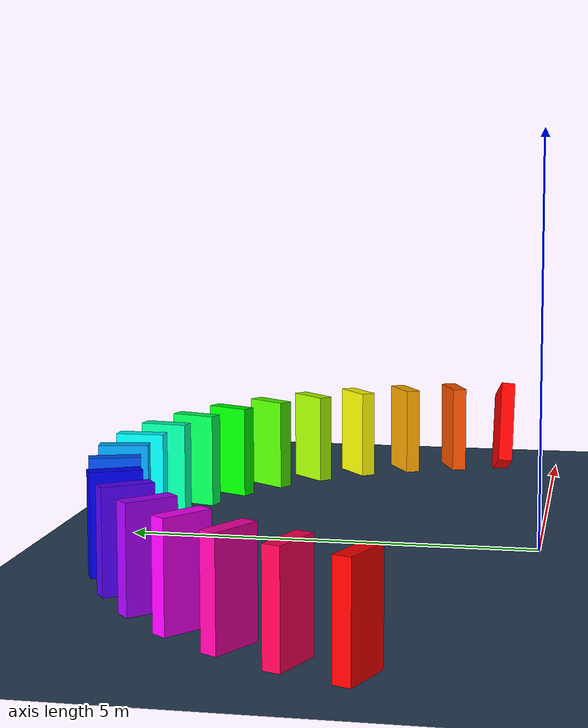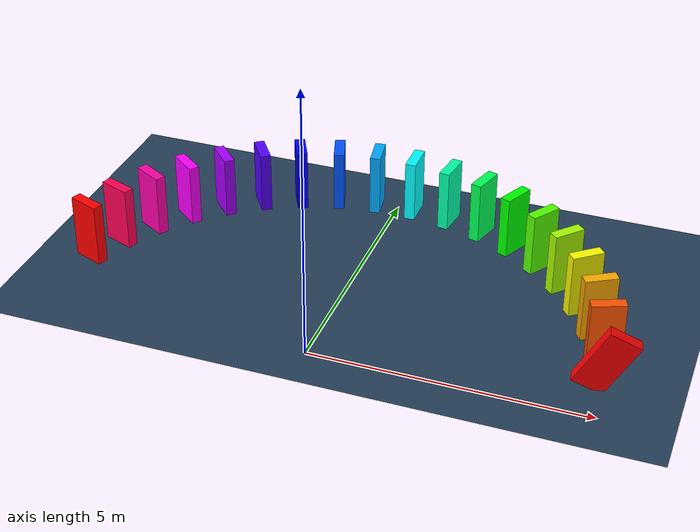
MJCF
<mujoco>
  <visual>
    <headlight diffuse="0.6 0.6 0.6" ambient="0.1 0.1 0.1" specular="0 0 0"/>
    <rgba haze="0.15 0.25 0.35 1"/>
    <global azimuth="120" elevation="-20"/>
  </visual>
  <asset>
    <texture type="skybox" builtin="gradient" rgb1="0.3 0.5 0.7" rgb2="0 0 0" width="512" height="3072"/>
    <texture type="2d" name="groundplane" builtin="checker" mark="edge" rgb1="0.2 0.3 0.4" rgb2="0.1 0.2 0.3" markrgb="0.8 0.8 0.8" width="300" height="300"/>
    <material name="groundplane" texture="groundplane" texuniform="true" texrepeat="5 5" reflectance="0.2"/>
  </asset>
  <worldbody>
    <light pos="0 0 1.5" dir="0 0 -1" directional="true"/>
    <geom name="floor" size="0 0 0.05" type="plane" material="groundplane"/>
    <body name="trigger" pos="4.9384 0.7822 0.5767" euler="0 28.0 103.3">
      <geom type="box" size="0.1000 0.3000 0.6000" rgba="1.000 0.000 0.000 1"/>
      <freejoint/>
    </body>
    <body name="domino_001" pos="4.7661 1.5114 0.6000" euler="0 0.0 111.9">
      <geom type="box" size="0.1000 0.3000 0.6000" rgba="1.000 0.333 0.000 1"/>
      <freejoint/>
    </body>
    <body name="domino_002" pos="4.4867 2.2066 0.6000" euler="0 0.0 120.5">
      <geom type="box" size="0.1000 0.3000 0.6000" rgba="1.000 0.667 0.000 1"/>
      <freejoint/>
    </body>
    <body name="domino_003" pos="4.1066 2.8524 0.6000" euler="0 0.0 129.1">
      <geom type="box" size="0.1000 0.3000 0.6000" rgba="1.000 1.000 0.000 1"/>
      <freejoint/>
    </body>
    <body name="domino_004" pos="3.6342 3.4340 0.6000" euler="0 0.0 137.7">
      <geom type="box" size="0.1000 0.3000 0.6000" rgba="0.667 1.000 0.000 1"/>
      <freejoint/>
    </body>
    <body name="domino_005" pos="3.0802 3.9385 0.6000" euler="0 0.0 146.3">
      <geom type="box" size="0.1000 0.3000 0.6000" rgba="0.333 1.000 0.000 1"/>
      <freejoint/>
    </body>
    <body name="domino_006" pos="2.4571 4.3546 0.6000" euler="0 0.0 154.9">
      <geom type="box" size="0.1000 0.3000 0.6000" rgba="0.000 1.000 0.000 1"/>
      <freejoint/>
    </body>
    <body name="domino_007" pos="1.7788 4.6729 0.6000" euler="0 0.0 163.5">
      <geom type="box" size="0.1000 0.3000 0.6000" rgba="0.000 1.000 0.333 1"/>
      <freejoint/>
    </body>
    <body name="domino_008" pos="1.0605 4.8862 0.6000" euler="0 0.0 172.1">
      <geom type="box" size="0.1000 0.3000 0.6000" rgba="0.000 1.000 0.667 1"/>
      <freejoint/>
    </body>
    <body name="domino_009" pos="0.3184 4.9899 0.6000" euler="0 0.0 -179.4">
      <geom type="box" size="0.1000 0.3000 0.6000" rgba="0.000 1.000 1.000 1"/>
      <freejoint/>
    </body>
    <body name="domino_010" pos="-0.4309 4.9814 0.6000" euler="0 0.0 -170.8">
      <geom type="box" size="0.1000 0.3000 0.6000" rgba="0.000 0.667 1.000 1"/>
      <freejoint/>
    </body>
    <body name="domino_011" pos="-1.1705 4.8611 0.6000" euler="0 0.0 -162.2">
      <geom type="box" size="0.1000 0.3000 0.6000" rgba="0.000 0.333 1.000 1"/>
      <freejoint/>
    </body>
    <body name="domino_012" pos="-1.8837 4.6316 0.6000" euler="0 0.0 -153.6">
      <geom type="box" size="0.1000 0.3000 0.6000" rgba="0.000 0.000 1.000 1"/>
      <freejoint/>
    </body>
    <body name="domino_013" pos="-2.5547 4.2981 0.6000" euler="0 0.0 -145.0">
      <geom type="box" size="0.1000 0.3000 0.6000" rgba="0.333 0.000 1.000 1"/>
      <freejoint/>
    </body>
    <body name="domino_014" pos="-3.1683 3.8680 0.6000" euler="0 0.0 -136.4">
      <geom type="box" size="0.1000 0.3000 0.6000" rgba="0.667 0.000 1.000 1"/>
      <freejoint/>
    </body>
    <body name="domino_015" pos="-3.7108 3.3511 0.6000" euler="0 0.0 -127.8">
      <geom type="box" size="0.1000 0.3000 0.6000" rgba="1.000 0.000 1.000 1"/>
      <freejoint/>
    </body>
    <body name="domino_016" pos="-4.1699 2.7590 0.6000" euler="0 0.0 -119.2">
      <geom type="box" size="0.1000 0.3000 0.6000" rgba="1.000 0.000 0.667 1"/>
      <freejoint/>
    </body>
    <body name="domino_017" pos="-4.5354 2.1048 0.6000" euler="0 0.0 -110.6">
      <geom type="box" size="0.1000 0.3000 0.6000" rgba="1.000 0.000 0.333 1"/>
      <freejoint/>
    </body>
    <body name="domino_018" pos="-4.7990 1.4035 0.6000" euler="0 0.0 -110.6">
      <geom type="box" size="0.1000 0.3000 0.6000" rgba="1.000 0.000 0.000 1"/>
      <freejoint/>
    </body>
  </worldbody>
</mujoco>
